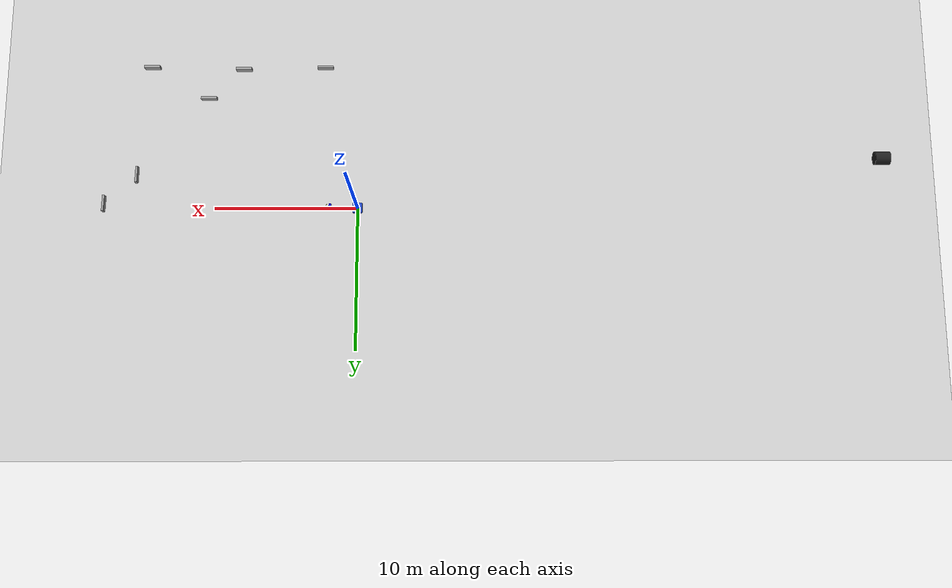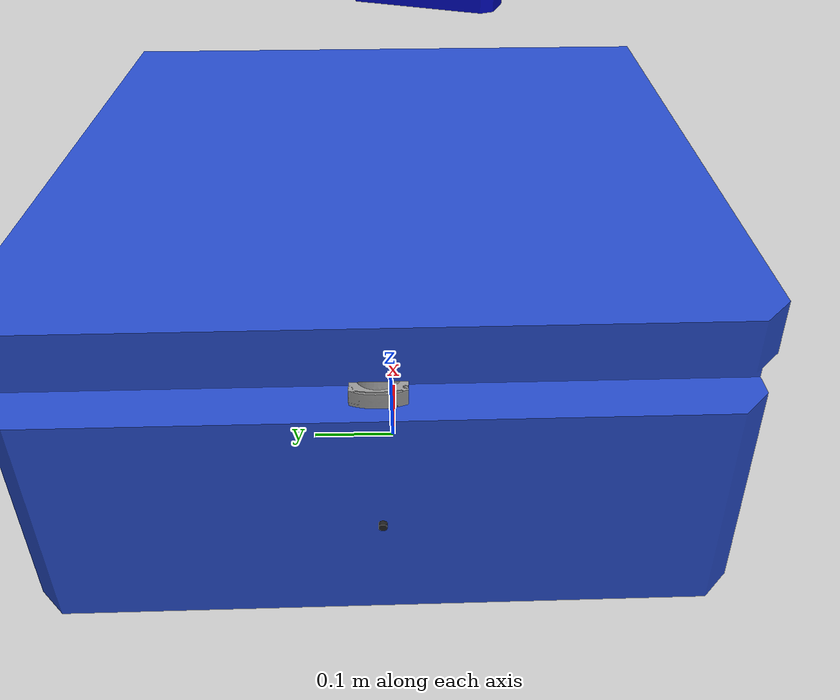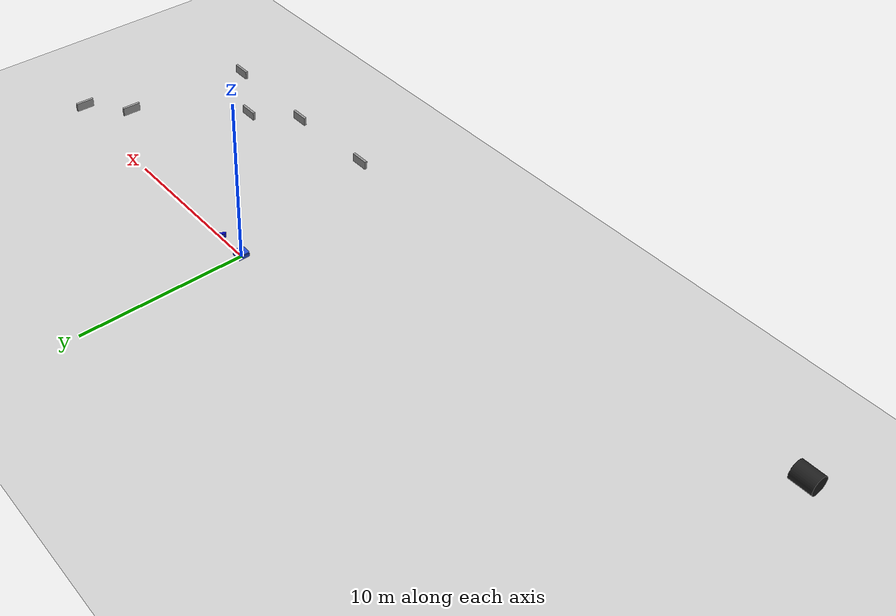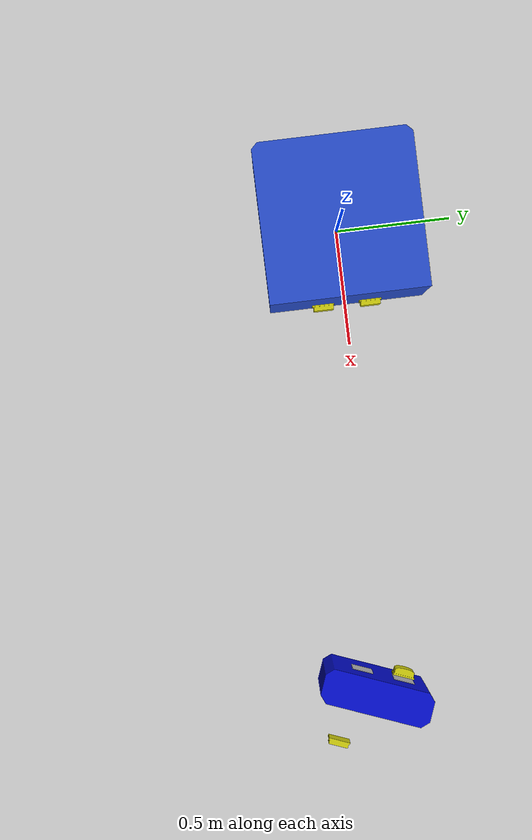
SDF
<?xml version="1.0" ?>
<sdf version="1.5">
  <world name="default">
    <include>
      <uri>model://sun</uri>
    </include>
    <include>
      <uri>model://ground_plane</uri>
    </include>
    <light type="point" name="point_light">
      <pose>0 0 1 0 0 0</pose>
      <diffuse>1 1 1 1</diffuse>
      <specular>.1 .1 .1 1</specular>
      <attenuation>
        <range>20</range>
        <constant>0.8</constant>
        <linear>0.03</linear>
        <quadratic>0.00</quadratic>
      </attenuation>
      <cast_shadows>false</cast_shadows>
    </light>

    <include>
      <uri>model://obstacle</uri>
      <pose>9 -1.5 0.05 0 0 1.570796</pose>
    </include>

    <include>
      <uri>model://agv</uri>
      <pose>0 0 0.06 0 0 3.14159265359</pose>
    </include>

    <include>
      <uri>model://charge_station</uri>
      <pose>1.92 -0.04 0.01 0 0 2.77387 </pose>
    </include>

    <gui fullscreen='0'>
      <camera name='user_camera'>
        <pose frame=''>-2.6 1.68 2.17 0 0.52 -0.45</pose>
        <view_controller>orbit</view_controller>
        <projection_type>perspective</projection_type>
      </camera>
    </gui>

    <include>
      <uri>model://direction</uri>
      <pose>-0.62 -1 -0.35 0 0 0</pose>
    </include>

    <model name='intersection_point'>
      <pose frame='map'>0 0 -0.38 0 0 0</pose>

      <scale>1 1 1</scale>
      <static>true</static>
      <link name='link'>
        <visual name='visual'>
          <geometry>
            <sphere>
              <radius>0.05</radius>
            </sphere>
          </geometry>
          <material>
            <script>
              <name>Gazebo/Red</name>
              <uri>file://media/materials/scripts/gazebo.material</uri>
            </script>
          </material>
        </visual>
      </link>
    </model>
  </world>
</sdf>

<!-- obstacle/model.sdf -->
<sdf version="1.5">
  <model name='obstacle'>
    <static>1</static>
    <model name='box_1'>
      <static>1</static>
      <pose frame=''>-8.79525 6.55756 0.26942 0 0 0</pose>
      <link name='link'>
        <inertial>
          <mass>1</mass>
          <inertia>
            <ixx>0.166667</ixx>
            <ixy>0</ixy>
            <ixz>0</ixz>
            <iyy>0.166667</iyy>
            <iyz>0</iyz>
            <izz>0.166667</izz>
          </inertia>
        </inertial>
        <collision name='collision'>
          <geometry>
            <box>
              <size>0.154617 1.12556 0.538644</size>
            </box>
          </geometry>
          <max_contacts>10</max_contacts>
          <surface>
            <contact>
              <ode/>
            </contact>
            <bounce/>
            <friction>
              <torsional>
                <ode/>
              </torsional>
              <ode/>
            </friction>
          </surface>
        </collision>
        <visual name='visual'>
          <geometry>
            <box>
              <size>0.154617 1.12556 0.538644</size>
            </box>
          </geometry>
          <material>
            <script>
              <name>Gazebo/Grey</name>
              <uri>file://media/materials/scripts/gazebo.material</uri>
            </script>
          </material>
        </visual>
        <self_collide>0</self_collide>
        <kinematic>0</kinematic>
        <gravity>1</gravity>
      </link>
    </model>
    <model name='box_2'>
      <static>true</static>
      <pose frame=''>-8.67589 0.75435 0.26942 -1e-06 -2e-06 -0.000211</pose>
      <link name='link'>
        <inertial>
          <mass>1</mass>
          <inertia>
            <ixx>0.166667</ixx>
            <ixy>0</ixy>
            <ixz>0</ixz>
            <iyy>0.166667</iyy>
            <iyz>0</iyz>
            <izz>0.166667</izz>
          </inertia>
        </inertial>
        <collision name='collision'>
          <geometry>
            <box>
              <size>0.154617 1.12556 0.538644</size>
            </box>
          </geometry>
          <max_contacts>10</max_contacts>
          <surface>
            <contact>
              <ode/>
            </contact>
            <bounce/>
            <friction>
              <torsional>
                <ode/>
              </torsional>
              <ode/>
            </friction>
          </surface>
        </collision>
        <visual name='visual'>
          <geometry>
            <box>
              <size>0.154617 1.12556 0.538644</size>
            </box>
          </geometry>
          <material>
            <script>
              <name>Gazebo/Grey</name>
              <uri>file://media/materials/scripts/gazebo.material</uri>
            </script>
          </material>
        </visual>
        <self_collide>0</self_collide>
        <kinematic>0</kinematic>
        <gravity>1</gravity>
      </link>
    </model>
    <model name='box_3'>
      <static>true</static>
      <pose frame=''>-6.5101 -1.66586 0.271645 0 0.030369 0.002364</pose>
      <link name='link'>
        <inertial>
          <mass>1</mass>
          <inertia>
            <ixx>0.166667</ixx>
            <ixy>0</ixy>
            <ixz>0</ixz>
            <iyy>0.166667</iyy>
            <iyz>0</iyz>
            <izz>0.166667</izz>
          </inertia>
        </inertial>
        <collision name='collision'>
          <geometry>
            <box>
              <size>0.154617 1.12556 0.538644</size>
            </box>
          </geometry>
          <max_contacts>10</max_contacts>
          <surface>
            <contact>
              <ode/>
            </contact>
            <bounce/>
            <friction>
              <torsional>
                <ode/>
              </torsional>
              <ode/>
            </friction>
          </surface>
        </collision>
        <visual name='visual'>
          <geometry>
            <box>
              <size>0.154617 1.12556 0.538644</size>
            </box>
          </geometry>
          <material>
            <script>
              <name>Gazebo/Grey</name>
              <uri>file://media/materials/scripts/gazebo.material</uri>
            </script>
          </material>
        </visual>
        <self_collide>0</self_collide>
        <kinematic>0</kinematic>
        <gravity>1</gravity>
      </link>
    </model>
    <model name='box_4'>
      <static>true</static>
      <pose frame=''>-8.83332 -5.80146 0.26942 -0 -0 -0.000209</pose>
      <link name='link'>
        <inertial>
          <mass>1</mass>
          <inertia>
            <ixx>0.166667</ixx>
            <ixy>0</ixy>
            <ixz>0</ixz>
            <iyy>0.166667</iyy>
            <iyz>0</iyz>
            <izz>0.166667</izz>
          </inertia>
        </inertial>
        <collision name='collision'>
          <geometry>
            <box>
              <size>0.154617 1.12556 0.538644</size>
            </box>
          </geometry>
          <max_contacts>10</max_contacts>
          <surface>
            <contact>
              <ode/>
            </contact>
            <bounce/>
            <friction>
              <torsional>
                <ode/>
              </torsional>
              <ode/>
            </friction>
          </surface>
        </collision>
        <visual name='visual'>
          <geometry>
            <box>
              <size>0.154617 1.12556 0.538644</size>
            </box>
          </geometry>
          <material>
            <script>
              <name>Gazebo/Grey</name>
              <uri>file://media/materials/scripts/gazebo.material</uri>
            </script>
          </material>
        </visual>
        <self_collide>0</self_collide>
        <kinematic>0</kinematic>
        <gravity>1</gravity>
      </link>
    </model>

    <model name='box_6'>
      <static>1</static>
      <pose frame=''>1.16997 -8.74604 0.269425 -0 -0 -1.60013</pose>
      <link name='link'>
        <inertial>
          <mass>1</mass>
          <inertia>
            <ixx>0.166667</ixx>
            <ixy>0</ixy>
            <ixz>0</ixz>
            <iyy>0.166667</iyy>
            <iyz>0</iyz>
            <izz>0.166667</izz>
          </inertia>
        </inertial>
        <collision name='collision'>
          <geometry>
            <box>
              <size>0.154617 1.12556 0.538644</size>
            </box>
          </geometry>
          <max_contacts>10</max_contacts>
          <surface>
            <contact>
              <ode/>
            </contact>
            <bounce/>
            <friction>
              <torsional>
                <ode/>
              </torsional>
              <ode/>
            </friction>
          </surface>
        </collision>
        <visual name='visual'>
          <geometry>
            <box>
              <size>0.154617 1.12556 0.538644</size>
            </box>
          </geometry>
          <material>
            <script>
              <name>Gazebo/Grey</name>
              <uri>file://media/materials/scripts/gazebo.material</uri>
            </script>
          </material>
        </visual>
        <self_collide>0</self_collide>
        <kinematic>0</kinematic>
        <gravity>1</gravity>
      </link>
    </model>
    <model name='box_7'>
      <static>true</static>
      <pose frame=''>-0.89334 -6.52649 0.269425 -0 -0 -1.60013</pose>
      <link name='link'>
        <inertial>
          <mass>1</mass>
          <inertia>
            <ixx>0.166667</ixx>
            <ixy>0</ixy>
            <ixz>0</ixz>
            <iyy>0.166667</iyy>
            <iyz>0</iyz>
            <izz>0.166667</izz>
          </inertia>
        </inertial>
        <collision name='collision'>
          <geometry>
            <box>
              <size>0.154617 1.12556 0.538644</size>
            </box>
          </geometry>
          <max_contacts>10</max_contacts>
          <surface>
            <contact>
              <ode/>
            </contact>
            <bounce/>
            <friction>
              <torsional>
                <ode/>
              </torsional>
              <ode/>
            </friction>
          </surface>
        </collision>
        <visual name='visual'>
          <geometry>
            <box>
              <size>0.154617 1.12556 0.538644</size>
            </box>
          </geometry>
          <material>
            <script>
              <name>Gazebo/Grey</name>
              <uri>file://media/materials/scripts/gazebo.material</uri>
            </script>
          </material>
        </visual>
        <self_collide>0</self_collide>
        <kinematic>0</kinematic>
        <gravity>1</gravity>
      </link>
    </model>
  </model>
</sdf>

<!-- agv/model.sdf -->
<sdf version="1.5">
  <model name="agv_car">
    <static>false</static>

    <link name="base_footprint">
      <pose>0 0 0 0 0 0</pose>
    </link>

    <link name="base_link">
      <pose>0 0 0 0 0 0</pose>
      <inertial>
        <pose>0 0 0.15 0 0 0</pose>
        <mass>100</mass>
      </inertial>
      <collision name="base_collision">
        <geometry>
          <mesh>
            <uri>model://agv/meshes/chassis_v2.stl</uri>
            <scale>1 1 1</scale>
          </mesh>
        </geometry>
      </collision>
      <visual name="base_visual">
        <geometry>
          <mesh>
            <uri>model://agv/meshes/chassis_v2.stl</uri>
            <scale>1 1 1</scale>
          </mesh>
        </geometry>
        <material>
          <script>
            <uri>file://media/materials/scripts/gazebo.material</uri>
            <name>Gazebo/Blue</name>
          </script>
        </material>
      </visual>
      <sensor name="imu_sensor" type="imu">
        <always_on>true</always_on>
        <update_rate>60</update_rate>
        <visualize>true</visualize>
        <topic>imu_sensor</topic>
        <plugin filename="libgazebo_ros_imu_sensor.so" name="imu_plugin">
          <topicName>imu</topicName>
          <bodyName>imu_link</bodyName>
          <updateRateHZ>10.0</updateRateHZ>
          <gaussianNoise>0.0</gaussianNoise>
          <xyzOffset>0 0 0</xyzOffset>
          <rpyOffset>0 0 0</rpyOffset>
          <frameName>imu_link</frameName>
          <initialOrientationAsReference>false</initialOrientationAsReference>
        </plugin>
        <pose>0 0 0 0 0 0</pose>
      </sensor>
    </link>

    <joint type="fixed" name="base_joint">
      <parent>base_link</parent>
      <child>base_footprint</child>
    </joint>

    <!-- Wheel -->
    <link name="wheel_left">
      <pose>0 0.275 0.075 0 0 0</pose>
      <collision name="wheel_left_collision">
        <geometry>
          <mesh>
            <uri>model://agv/meshes/wheel_left.stl</uri>
            <scale>1 1 1</scale>
          </mesh>
        </geometry>
        <surface>
          <friction>
            <ode>
              <mu>0.99</mu>
              <mu2>0.9</mu2>
            </ode>
          </friction>
        </surface>
      </collision>
      <visual name="wheel_left_visual">
        <geometry>
          <mesh>
            <uri>model://agv/meshes/wheel_left.stl</uri>
            <scale>1 1 1</scale>
          </mesh>
        </geometry>
        <material>
          <script>
            <uri>file://media/materials/scripts/gazebo.material</uri>
            <name>Gazebo/Black</name>
          </script>
        </material>
      </visual>
    </link>

    <link name="wheel_right">
      <pose>0 -0.275 0.075 0 0 0</pose>
        <collision name="wheel_right_collision">
          <geometry>
            <mesh>
              <uri>model://agv/meshes/wheel_right.stl</uri>
              <scale>1 1 1</scale>
            </mesh>
          </geometry>
          <surface>
            <friction>
              <ode>
                <mu>0.99</mu>
                <mu2>0.9</mu2>
              </ode>
            </friction>
          </surface>
        </collision>
        <visual name="wheel_right_visual">
          <geometry>
            <mesh>
              <uri>model://agv/meshes/wheel_right.stl</uri>
              <scale>1 1 1</scale>
            </mesh>
          </geometry>
          <material>
            <script>
              <uri>file://media/materials/scripts/gazebo.material</uri>
              <name>Gazebo/Black</name>
            </script>
          </material>
        </visual>
    </link>

    <joint type="revolute" name="wheel_left_hinge">
      <pose>0 0 0 0 0 0</pose>
      <child>wheel_left</child>
      <parent>base_link</parent>
      <axis>
        <xyz>0 1 0</xyz>
      </axis>
    </joint>

    <joint type="revolute" name="wheel_right_hinge">
      <pose>0 0 0 0 0 0</pose>
      <child>wheel_right</child>
      <parent>base_link</parent>
      <axis>
        <xyz>0 1 0</xyz>
      </axis>
    </joint>

    <plugin name="wheel_drive_controller" filename="libgazebo_ros_diff_drive.so">
      <!-- Plugin update rate in Hz -->
      <updateRate>30</updateRate>
      <!-- Name of left joint, defaults to `left_joint` -->
      <leftJoint>wheel_left_hinge</leftJoint>
      <!-- Name of right joint, defaults to `right_joint` -->
      <rightJoint>wheel_right_hinge</rightJoint>
      <!-- The distance from the center of one wheel to the other, in meters, defaults to 0.34 m -->
      <wheelSeparation>0.55</wheelSeparation>
      <!-- Diameter of the wheels, in meters, defaults to 0.15 m -->
      <wheelDiameter>0.15</wheelDiameter>
      <!-- Wheel acceleration, in rad/s^2, defaults to 0.0 rad/s^2 -->
      <wheelAcceleration>1.0</wheelAcceleration>
      <!-- Maximum torque which the wheels can produce, in Nm, defaults to 5 Nm -->
      <wheelTorque>50</wheelTorque>
      <!-- Topic to receive geometry_msgs/Twist message commands, defaults to `cmd_vel` -->
      <commandTopic>cmd_vel</commandTopic>
      <!-- Topic to publish nav_msgs/Odometry messages, defaults to `odom` -->
      <odometryTopic>odom</odometryTopic>
      <!-- Odometry frame, defaults to `odom` -->
      <odometryFrame>odom</odometryFrame>
      <!-- Robot frame to calculate odometry from, defaults to `base_footprint` -->
      <robotBaseFrame>base_link</robotBaseFrame>
      <!-- Odometry source, 0 for ENCODER, 1 for WORLD, defaults to WORLD -->
      <odometrySource>0</odometrySource>
      <!-- Set to true to publish transforms for the wheel links, defaults to false -->
      <publishWheelTF>true</publishWheelTF>
      <!-- Set to true to publish transforms for the odometry, defaults to true -->
      <publishOdom>true</publishOdom>
      <!-- Set to true to publish sensor_msgs/JointState on /joint_states for the wheel joints, defaults to false -->
      <publishWheelJointState>true</publishWheelJointState>
      <!-- Set to true to swap right and left wheels, defaults to true -->
      <legacyMode>false</legacyMode>

    </plugin>

    <!-- Lidar sick_tim551.stl-->
    <link name="sick_tim551">
      <pose>0.29 0 0.285 0 0 0</pose>

      <visual name="sick_tim551_visual">
        <geometry>
          <mesh>
            <uri>model://agv/meshes/sick_tim551.stl</uri>
            <scale>1 1 1</scale>
          </mesh>
        </geometry>
        <material>
          <script>
            <uri>file://media/materials/scripts/gazebo.material</uri>
            <name>Gazebo/Gray</name>
          </script>
        </material>
      </visual>

      <sensor type="ray" name="sick_tim551">
        <always_on>1</always_on>
        <update_rate>30</update_rate>
        <visualize>true</visualize>

        <ray>
          <scan>
            <horizontal>
              <samples>360</samples>
              <resolution>1</resolution>
              <min_angle>-1.5707963</min_angle>
              <max_angle>1.5707963</max_angle>

            </horizontal>
          </scan>
          <range>
            <min>0.1</min>
            <max>10</max>
            <resolution>0.001</resolution>
          </range>
          <noise>
            <type>gaussian</type>
            <mean>0.0</mean>
            <stddev>0.01</stddev>
          </noise>
        </ray>

        <plugin name="laser" filename="libgazebo_ros_laser.so">
          <topicName>scan</topicName>
          <frameName>laser</frameName>
        </plugin>
      </sensor>
    </link>

    <joint type="fixed" name="laser_joint">
      <child>sick_tim551</child>
      <parent>base_link</parent>
    </joint>

    <!-- Camera -->
    <link name="camera_front">
      <pose>0.33 0 0.13 0 0 0</pose>

      <visual name="camera_front_visual">
        <geometry>
          <mesh>
            <uri>model://agv/meshes/camera_front.stl</uri>
            <scale>1 1 1</scale>
          </mesh>
        </geometry>
        <material>
          <script>
            <uri>file://media/materials/scripts/gazebo.material</uri>
            <name>Gazebo/Black</name>
          </script>
        </material>
      </visual>

      <sensor type="camera" name="camera_front">
        <update_rate>30.0</update_rate>
        <camera name="camera_front">
          <horizontal_fov>1.3962634</horizontal_fov>
          <image>
            <width>800</width>
            <height>600</height>
            <format>R8G8B8</format>
          </image>
          <clip>
            <near>0.02</near>
            <far>300</far>
          </clip>
          <noise>
            <type>gaussian</type>
            <!-- Noise is sampled independently per pixel on each frame.
                That pixel's noise value is added to each of its color
                channels, which at that point lie in the range [0,1]. -->
            <mean>0.0</mean>
            <stddev>0.007</stddev>
          </noise>
        </camera>

        <plugin name="camera_controller" filename="libgazebo_ros_camera.so">
          <alwaysOn>true</alwaysOn>
          <updateRate>0.0</updateRate>
          <cameraName>camera_front</cameraName>
          <imageTopicName>image_raw</imageTopicName>
          <cameraInfoTopicName>camera_info</cameraInfoTopicName>
          <frameName>camera_front</frameName>
          <hackBaseline>0.07</hackBaseline>
          <distortionK1>0.0</distortionK1>
          <distortionK2>0.0</distortionK2>
          <distortionK3>0.0</distortionK3>
          <distortionT1>0.0</distortionT1>
          <distortionT2>0.0</distortionT2>
        </plugin>
      </sensor>
    </link>
    <joint type="fixed" name="front_cam_joint">
      <child>camera_front</child>
      <parent>base_link</parent>
    </joint>

    <link name="camera_back">
      <pose>-0.33 0 0.13 0 0 3.14159265359</pose>
      <visual name="camera_back_visual">
        <geometry>
          <mesh>
            <uri>model://agv/meshes/camera_back.stl</uri>
            <scale>1 1 1</scale>
          </mesh>
        </geometry>
        <material>
          <script>
            <uri>file://media/materials/scripts/gazebo.material</uri>
            <name>Gazebo/Black</name>
          </script>
        </material>
      </visual>

      <sensor type="camera" name="camera_back">
        <update_rate>30.0</update_rate>
        <camera name="camera_back">
          <horizontal_fov>1.3962634</horizontal_fov>
          <image>
            <width>800</width>
            <height>600</height>
            <format>R8G8B8</format>
          </image>
          <clip>
            <near>0.02</near>
            <far>300</far>
          </clip>
          <noise>
            <type>gaussian</type>
            <mean>0.0</mean>
            <stddev>0.007</stddev>
          </noise>
        </camera>
        <plugin name="camera_controller" filename="libgazebo_ros_camera.so">
          <alwaysOn>true</alwaysOn>
          <updateRate>0.0</updateRate>
          <cameraName>camera_back</cameraName>
          <imageTopicName>image_raw</imageTopicName>
          <cameraInfoTopicName>camera_info</cameraInfoTopicName>
          <frameName>camera_back</frameName>
          <hackBaseline>0.07</hackBaseline>
          <distortionK1>0.0</distortionK1>
          <distortionK2>0.0</distortionK2>
          <distortionK3>0.0</distortionK3>
          <distortionT1>0.0</distortionT1>
          <distortionT2>0.0</distortionT2>
        </plugin>
      </sensor>
    </link>
    <joint type="fixed" name="camera_back_joint">
      <child>camera_back</child>
      <parent>base_link</parent>
    </joint>

    <!-- Caster -->
    <link name="caster_front">
      <pose>0.3 0 0.02 0 0 0 </pose>
      <collision name="caster_front_collision">
        <geometry>
          <mesh>
            <uri>model://agv/meshes/caster_front.stl</uri>
            <scale>1 1 1</scale>
          </mesh>
        </geometry>
        <surface>
          <friction>
            <ode>
              <mu>0.1</mu>
              <mu2>0.1</mu2>
            </ode>
          </friction>
        </surface>
      </collision>

      <visual name="caster_front_visual">
        <geometry>
          <mesh>
            <uri>model://agv/meshes/caster_front.stl</uri>
            <scale>1 1 1</scale>
          </mesh>
        </geometry>
        <material>
          <script>
            <uri>file://media/materials/scripts/gazebo.material</uri>
            <name>Gazebo/Gray</name>
          </script>
        </material>
      </visual>
    </link>
    <joint type="fixed" name="caster_front_joint">
      <parent>base_link</parent>
      <child>caster_front</child>
    </joint>

    <link name="caster_back">
      <pose>-0.3 0 0.02 0 0 0 </pose>
      <collision name="caster_back_collision">
        <geometry>
          <mesh>
            <uri>model://agv/meshes/caster_back.stl</uri>
            <scale>1 1 1</scale>
          </mesh>
        </geometry>
        <surface>
          <friction>
            <ode>
              <mu>0.1</mu>
              <mu2>0.1</mu2>
            </ode>
          </friction>
        </surface>
      </collision>

      <visual name="caster_back_visual">
        <geometry>
          <mesh>
            <uri>model://agv/meshes/caster_back.stl</uri>
            <scale>1 1 1</scale>
          </mesh>
        </geometry>
        <material>
          <script>
            <uri>file://media/materials/scripts/gazebo.material</uri>
            <name>Gazebo/Gray</name>
          </script>
        </material>
      </visual>
    </link>
    <joint type="fixed" name="caster_back_joint">
      <parent>base_link</parent>
      <child>caster_back</child>
    </joint>

    <!-- Electrode -->
    <link name="electrode_postive">
      <pose>0 0 0 0 0 0 </pose>
      <collision name="electrode_postive_collision">
        <geometry>
          <mesh>
            <uri>model://agv/meshes/electrode-postive.dae</uri>
            <scale>1 1 1</scale>
          </mesh>
        </geometry>
        <surface>
          <friction>
            <ode>
              <mu>0.1</mu>
              <mu2>0.1</mu2>
            </ode>
          </friction>
        </surface>
      </collision>
      <visual name="electrode_postive_visual">
        <geometry>
          <mesh>
            <uri>model://agv/meshes/electrode-postive.dae</uri>
            <scale>1 1 1</scale>
          </mesh>
        </geometry>
      </visual>
      <sensor type="contact" name="bumper">
        <always_on>true</always_on>
        <update_rate>10.0</update_rate>
        <visualize>true</visualize>
        <contact>
          <collision>electrode_postive_collision</collision>
        </contact>
        <plugin name="gazebo_ros_bumper_controller" filename="libgazebo_ros_bumper.so">//gazebo自带的bumper插件调用样式
          <alwaysOn>true</alwaysOn>
          <updateRate>10</updateRate>
          <bumperTopicName>charge_station/bumper_left</bumperTopicName>
          <frameName>map</frameName>
        </plugin>
      </sensor>
    </link>
    <joint type="fixed" name="electrode_postive_joint">
      <child>electrode_postive</child>
      <parent>base_link</parent>
    </joint>

    <link name="electrode_negative">
      <pose>0 0 0 0 0 0 </pose>
      <collision name="electrode_negative_collision">
        <geometry>
          <mesh>
            <uri>model://agv/meshes/electrode-negative.dae</uri>
            <scale>1 1 1</scale>
          </mesh>
        </geometry>
        <surface>
          <friction>
            <ode>
              <mu>0.1</mu>
              <mu2>0.1</mu2>
            </ode>
          </friction>
        </surface>
      </collision>
      <visual name="electrode_negative_visual">
        <geometry>
          <mesh>
            <uri>model://agv/meshes/electrode-negative.dae</uri>
            <scale>1 1 1</scale>
          </mesh>
        </geometry>
      </visual>
      <sensor type="contact" name="bumper">
        <always_on>true</always_on>
        <update_rate>10.0</update_rate>
        <visualize>true</visualize>
        <contact>
          <collision>electrode_negative_collision</collision>
        </contact>
        <plugin name="gazebo_ros_bumper_controller" filename="libgazebo_ros_bumper.so">//gazebo自带的bumper插件调用样式
          <alwaysOn>true</alwaysOn>
          <updateRate>10</updateRate>
          <bumperTopicName>charge_station/bumper_right</bumperTopicName>
          <frameName>map</frameName>
        </plugin>
      </sensor>
    </link>
    <joint type="fixed" name="electrode_negative_joint">
      <child>electrode_negative</child>
      <parent>base_link</parent>
    </joint>
  </model>
</sdf>

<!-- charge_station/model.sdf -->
<sdf version="1.5">
  <model name="charge_station">
    <static>false</static>

    <link name="charge_station">
      <inertial>
        <pose>-0.05 0 0.01 0 0 0</pose>
        <mass>20.0</mass>
      </inertial>
      <pose>0 0 0 0 0 0</pose>
      <collision name="charge_station_collision">
        <geometry>
          <mesh>
            <uri>model://charge_station/meshes/charge-station.dae</uri>
            <scale>1 1 1</scale>
          </mesh>
        </geometry>
        <surface>
          <friction>
            <ode>
              <mu>0.99</mu>
              <mu2>0.9</mu2>
            </ode>
          </friction>
        </surface>
      </collision>
      <visual name="charge_station_visual">
        <geometry>
          <mesh>
            <uri>model://charge_station/meshes/charge-station.dae</uri>
            <scale>1 1 1</scale>
          </mesh>
        </geometry>
      </visual>
    </link>

    <link name="electrode_postive">
      <pose>0 0 0 0 0 0</pose>
      <visual name="apriltag_visual">
        <geometry>
          <mesh>
            <uri>model://charge_station/meshes/electrode-postive.dae</uri>
            <scale>1 1 1</scale>
          </mesh>
        </geometry>
      </visual>
      <collision name="electrode_postive_collision">
        <geometry>
          <mesh>
            <uri>model://charge_station/meshes/electrode-postive.dae</uri>
            <scale>1 1 1</scale>
          </mesh>
        </geometry>
        <surface>
          <friction>
            <ode>
              <mu>0.99</mu>
              <mu2>0.9</mu2>
            </ode>
          </friction>
        </surface>
      </collision>
    </link>

    <link name="electrode_negative">
      <pose>0 0 0 0 0 0</pose>
      <visual name="apriltag_visual">
        <geometry>
          <mesh>
            <uri>model://charge_station/meshes/electrode-negative.dae</uri>
            <scale>1 1 1</scale>
          </mesh>
        </geometry>
      </visual>
      <collision name="electrode_negative_collision">
        <geometry>
          <mesh>
            <uri>model://charge_station/meshes/electrode-negative.dae</uri>
            <scale>1 1 1</scale>
          </mesh>
        </geometry>
        <surface>
          <friction>
            <ode>
              <mu>0.99</mu>
              <mu2>0.9</mu2>
            </ode>
          </friction>
        </surface>
      </collision>
    </link>

    <link name="Apriltag-A">
      <pose>0 -0.09 0.16 0 0 0</pose>
      <visual name="apriltag_visual">
        <geometry>
          <mesh>
            <uri>model://charge_station/meshes/Apriltag-A.dae</uri>
            <scale>1 1 1</scale>
          </mesh>
        </geometry>
      </visual>
    </link>
    <link name="Apriltag-B">
      <pose>0 0.09 0.16 0 0 0</pose>
      <visual name="apriltag_visual">
        <geometry>
          <mesh>
            <uri>model://charge_station/meshes/Apriltag-B.dae</uri>
            <scale>1 1 1</scale>
          </mesh>
        </geometry>
      </visual>
    </link>

    <joint type="fixed" name="electrode_postive_joint">
      <child>electrode_postive</child>
      <parent>charge_station</parent>
    </joint>
    <joint type="fixed" name="electrode_negative_joint">
      <child>electrode_negative</child>
      <parent>charge_station</parent>
    </joint>
    <joint type="fixed" name="Apriltag_A_joint">
      <child>Apriltag-A</child>
      <parent>charge_station</parent>
    </joint>
    <joint type="fixed" name="Apriltag_B_joint">
      <child>Apriltag-B</child>
      <parent>charge_station</parent>
    </joint>

  </model>
</sdf>

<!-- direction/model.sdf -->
<sdf version="1.5">
  <model name="direction">
    <static>true</static>
    <link name="link">
      <visual name="visual">
        <geometry>
          <mesh>
            <uri>model://direction/meshes/direction.stl</uri>
            <scale>1 1 1</scale>
          </mesh>
        </geometry>
        <material>
        </material>
      </visual>
    </link>
  </model>
</sdf>
